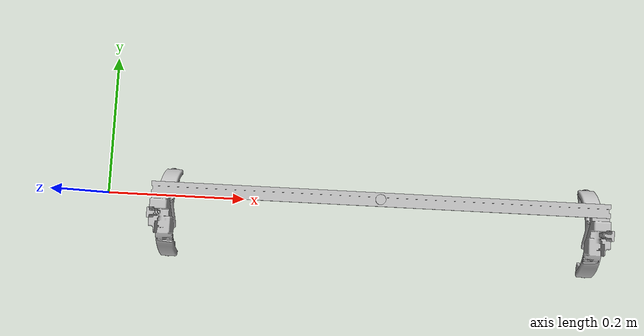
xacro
<?xml version="1.0" ?>
<robot name="gripper" xmlns:xacro="http://www.ros.org/wiki/xacro">

<xacro:include filename="$(find gripper_description)/urdf/materials.xacro" />
<xacro:include filename="$(find gripper_description)/urdf/gripper.trans" />
<xacro:include filename="$(find gripper_description)/urdf/gripper.gazebo" />
<link name="base_link">
  <inertial>
    <origin xyz="0.4 0.01 0.0215" rpy="0 0 0"/>
    <mass value="0.0017494744089678134"/>
    <inertia ixx="0.0" iyy="0.0" izz="0.0" ixy="0.0" iyz="-0.0" ixz="0.0"/>
  </inertial>
  <visual>
    <origin xyz="0 0 0" rpy="0 0 0"/>
    <geometry>
      <mesh filename="file://$(find gripper_description)/meshes/base_link.stl" scale="0.001 0.001 0.001"/>
    </geometry>
    <material name="silver"/>
  </visual>
  <collision>
    <origin xyz="0 0 0" rpy="0 0 0"/>
    <geometry>
      <mesh filename="file://$(find gripper_description)/meshes/base_link.stl" scale="0.001 0.001 0.001"/>
    </geometry>
  </collision>
</link>

<link name="bar_1">
  <inertial>
    <origin xyz="1.9010348850656555e-11 -3.4936407136750697e-06 -0.009977862695465682" rpy="0 0 0"/>
    <mass value="0.5478414730698096"/>
    <inertia ixx="4.1e-05" iyy="0.020157" izz="0.020157" ixy="-0.0" iyz="-0.0" ixz="-0.0"/>
  </inertial>
  <visual>
    <origin xyz="-0.4 -0.01 -0.02" rpy="0 0 0"/>
    <geometry>
      <mesh filename="file://$(find gripper_description)/meshes/bar_1.stl" scale="0.001 0.001 0.001"/>
    </geometry>
    <material name="silver"/>
  </visual>
  <collision>
    <origin xyz="-0.4 -0.01 -0.02" rpy="0 0 0"/>
    <geometry>
      <mesh filename="file://$(find gripper_description)/meshes/bar_1.stl" scale="0.001 0.001 0.001"/>
    </geometry>
  </collision>
</link>

<link name="lock_l_1">
  <inertial>
    <origin xyz="0.0025278748180634775 7.899943317221658e-08 -0.014132337298240557" rpy="0 0 0"/>
    <mass value="0.003835984002304337"/>
    <inertia ixx="1e-06" iyy="1e-06" izz="0.0" ixy="0.0" iyz="-0.0" ixz="-0.0"/>
  </inertial>
  <visual>
    <origin xyz="-0.070204 0.025074 -0.026402" rpy="0 0 0"/>
    <geometry>
      <mesh filename="file://$(find gripper_description)/meshes/lock_l_1.stl" scale="0.001 0.001 0.001"/>
    </geometry>
    <material name="silver"/>
  </visual>
  <collision>
    <origin xyz="-0.070204 0.025074 -0.026402" rpy="0 0 0"/>
    <geometry>
      <mesh filename="file://$(find gripper_description)/meshes/lock_l_1.stl" scale="0.001 0.001 0.001"/>
    </geometry>
  </collision>
</link>

<link name="finger2_l_1">
  <inertial>
    <origin xyz="0.0022745659169525756 -0.00877229789487095 -0.007897715055483763" rpy="0 0 0"/>
    <mass value="0.004845614789206538"/>
    <inertia ixx="4e-06" iyy="3e-06" izz="1e-06" ixy="-0.0" iyz="1e-06" ixz="0.0"/>
  </inertial>
  <visual>
    <origin xyz="-0.0706 -0.035177 0.054438" rpy="0 0 0"/>
    <geometry>
      <mesh filename="file://$(find gripper_description)/meshes/finger2_l_1.stl" scale="0.001 0.001 0.001"/>
    </geometry>
    <material name="silver"/>
  </visual>
  <collision>
    <origin xyz="-0.0706 -0.035177 0.054438" rpy="0 0 0"/>
    <geometry>
      <mesh filename="file://$(find gripper_description)/meshes/finger2_l_1.stl" scale="0.001 0.001 0.001"/>
    </geometry>
  </collision>
</link>

<link name="finger1_l_1">
  <inertial>
    <origin xyz="0.002274564332066839 0.008763184932397444 -0.00790271427358917" rpy="0 0 0"/>
    <mass value="0.004845614849704048"/>
    <inertia ixx="4e-06" iyy="3e-06" izz="1e-06" ixy="-0.0" iyz="-1e-06" ixz="-0.0"/>
  </inertial>
  <visual>
    <origin xyz="-0.0706 0.084598 0.054433" rpy="0 0 0"/>
    <geometry>
      <mesh filename="file://$(find gripper_description)/meshes/finger1_l_1.stl" scale="0.001 0.001 0.001"/>
    </geometry>
    <material name="silver"/>
  </visual>
  <collision>
    <origin xyz="-0.0706 0.084598 0.054433" rpy="0 0 0"/>
    <geometry>
      <mesh filename="file://$(find gripper_description)/meshes/finger1_l_1.stl" scale="0.001 0.001 0.001"/>
    </geometry>
  </collision>
</link>

<link name="lock_r_1">
  <inertial>
    <origin xyz="-0.0025278748180632693 7.899943317568603e-08 -0.014132337298240542" rpy="0 0 0"/>
    <mass value="0.003835984002304337"/>
    <inertia ixx="1e-06" iyy="1e-06" izz="0.0" ixy="-0.0" iyz="-0.0" ixz="0.0"/>
  </inertial>
  <visual>
    <origin xyz="-0.729796 0.025074 -0.026402" rpy="0 0 0"/>
    <geometry>
      <mesh filename="file://$(find gripper_description)/meshes/lock_r_1.stl" scale="0.001 0.001 0.001"/>
    </geometry>
    <material name="silver"/>
  </visual>
  <collision>
    <origin xyz="-0.729796 0.025074 -0.026402" rpy="0 0 0"/>
    <geometry>
      <mesh filename="file://$(find gripper_description)/meshes/lock_r_1.stl" scale="0.001 0.001 0.001"/>
    </geometry>
  </collision>
</link>

<link name="finger1_r_1">
  <inertial>
    <origin xyz="-0.002274564332066742 0.008763184932397486 -0.007902714273589517" rpy="0 0 0"/>
    <mass value="0.004845614849704048"/>
    <inertia ixx="4e-06" iyy="3e-06" izz="1e-06" ixy="0.0" iyz="-1e-06" ixz="0.0"/>
  </inertial>
  <visual>
    <origin xyz="-0.7294 0.084598 0.054433" rpy="0 0 0"/>
    <geometry>
      <mesh filename="file://$(find gripper_description)/meshes/finger1_r_1.stl" scale="0.001 0.001 0.001"/>
    </geometry>
    <material name="silver"/>
  </visual>
  <collision>
    <origin xyz="-0.7294 0.084598 0.054433" rpy="0 0 0"/>
    <geometry>
      <mesh filename="file://$(find gripper_description)/meshes/finger1_r_1.stl" scale="0.001 0.001 0.001"/>
    </geometry>
  </collision>
</link>

<link name="finger2_r_1">
  <inertial>
    <origin xyz="-0.00227456591695252 -0.008772297894870967 -0.007897715055483527" rpy="0 0 0"/>
    <mass value="0.004845614789206536"/>
    <inertia ixx="4e-06" iyy="3e-06" izz="1e-06" ixy="0.0" iyz="1e-06" ixz="-0.0"/>
  </inertial>
  <visual>
    <origin xyz="-0.7294 -0.035177 0.054438" rpy="0 0 0"/>
    <geometry>
      <mesh filename="file://$(find gripper_description)/meshes/finger2_r_1.stl" scale="0.001 0.001 0.001"/>
    </geometry>
    <material name="silver"/>
  </visual>
  <collision>
    <origin xyz="-0.7294 -0.035177 0.054438" rpy="0 0 0"/>
    <geometry>
      <mesh filename="file://$(find gripper_description)/meshes/finger2_r_1.stl" scale="0.001 0.001 0.001"/>
    </geometry>
  </collision>
</link>

<link name="claw_body_l_1">
  <inertial>
    <origin xyz="-0.03524534109739369 -0.0240758801852423 -0.020152637061963127" rpy="0 0 0"/>
    <mass value="0.044924940451362305"/>
    <inertia ixx="6.7e-05" iyy="2.4e-05" izz="4.9e-05" ixy="-0.0" iyz="-1e-06" ixz="-0.0"/>
  </inertial>
  <visual>
    <origin xyz="-0.117506 -0.000138 -0.009943" rpy="0 0 0"/>
    <geometry>
      <mesh filename="file://$(find gripper_description)/meshes/claw_body_l_1.stl" scale="0.001 0.001 0.001"/>
    </geometry>
    <material name="silver"/>
  </visual>
  <collision>
    <origin xyz="-0.117506 -0.000138 -0.009943" rpy="0 0 0"/>
    <geometry>
      <mesh filename="file://$(find gripper_description)/meshes/claw_body_l_1.stl" scale="0.001 0.001 0.001"/>
    </geometry>
  </collision>
</link>

<link name="claw_body_r_1">
  <inertial>
    <origin xyz="0.035245341097393856 -0.024075880185242354 -0.020152637061963248" rpy="0 0 0"/>
    <mass value="0.04492494045136231"/>
    <inertia ixx="6.7e-05" iyy="2.4e-05" izz="4.9e-05" ixy="0.0" iyz="-1e-06" ixz="0.0"/>
  </inertial>
  <visual>
    <origin xyz="-0.682494 -0.000138 -0.009943" rpy="0 0 0"/>
    <geometry>
      <mesh filename="file://$(find gripper_description)/meshes/claw_body_r_1.stl" scale="0.001 0.001 0.001"/>
    </geometry>
    <material name="silver"/>
  </visual>
  <collision>
    <origin xyz="-0.682494 -0.000138 -0.009943" rpy="0 0 0"/>
    <geometry>
      <mesh filename="file://$(find gripper_description)/meshes/claw_body_r_1.stl" scale="0.001 0.001 0.001"/>
    </geometry>
  </collision>
</link>

<joint name="base" type="fixed">
  <origin xyz="0.4 0.01 0.02" rpy="0 0 0"/>
  <parent link="base_link"/>
  <child link="bar_1"/>
</joint>

<joint name="lock_l" type="prismatic">
  <origin xyz="-0.047302 -0.025212 0.016459" rpy="0 0 0"/>
  <parent link="claw_body_l_1"/>
  <child link="lock_l_1"/>
  <axis xyz="0.0 -0.0 1.0"/>
  <limit upper="0.0" lower="-0.02" effort="100" velocity="100"/>
</joint>

<joint name="finger2_l" type="revolute">
  <origin xyz="-0.046906 0.035039 -0.064381" rpy="0 0 0"/>
  <parent link="claw_body_l_1"/>
  <child link="finger2_l_1"/>
  <axis xyz="-1.0 0.0 0.0"/>
  <limit upper="0.087266" lower="-0.15708" effort="100" velocity="100"/>
</joint>

<joint name="finger1_l" type="revolute">
  <origin xyz="-0.046906 -0.084736 -0.064376" rpy="0 0 0"/>
  <parent link="claw_body_l_1"/>
  <child link="finger1_l_1"/>
  <axis xyz="-1.0 0.0 0.0"/>
  <limit upper="0.15708" lower="-0.087266" effort="100" velocity="100"/>
</joint>

<joint name="lock_r" type="prismatic">
  <origin xyz="0.047302 -0.025212 0.016459" rpy="0 0 0"/>
  <parent link="claw_body_r_1"/>
  <child link="lock_r_1"/>
  <axis xyz="0.0 0.0 -1.0"/>
  <limit upper="0.02" lower="0.0" effort="100" velocity="100"/>
</joint>

<joint name="finger1_r" type="revolute">
  <origin xyz="0.046906 -0.084736 -0.064376" rpy="0 0 0"/>
  <parent link="claw_body_r_1"/>
  <child link="finger1_r_1"/>
  <axis xyz="1.0 0.0 0.0"/>
  <limit upper="0.087266" lower="-0.15708" effort="100" velocity="100"/>
</joint>

<joint name="finger2_r" type="revolute">
  <origin xyz="0.046906 0.035039 -0.064381" rpy="0 0 0"/>
  <parent link="claw_body_r_1"/>
  <child link="finger2_r_1"/>
  <axis xyz="1.0 0.0 0.0"/>
  <limit upper="0.15708" lower="-0.087266" effort="100" velocity="100"/>
</joint>

<joint name="claw_body_l" type="fixed">
  <origin xyz="-0.282494 -0.009862 -0.010057" rpy="0 0 0"/>
  <parent link="bar_1"/>
  <child link="claw_body_l_1"/>
</joint>

<joint name="claw_body_r" type="fixed">
  <origin xyz="0.282494 -0.009862 -0.010057" rpy="0 0 0"/>
  <parent link="bar_1"/>
  <child link="claw_body_r_1"/>
</joint>

</robot>

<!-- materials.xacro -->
<robot name="gripper" xmlns:xacro="http://www.ros.org/wiki/xacro" >

<material name="silver">
  <color rgba="0.750 0.750 0.750 1.000"/>
</material>
<material name="red">
  <color rgba="0.700 0.000 0.000 1.000"/>
</material>
<material name="green">
  <color rgba="0.000 0.700 0.000 1.000"/>
</material>
<material name="black">
  <color rgba="0.250 0.250 0.250 1.000"/>
</material>

</robot>

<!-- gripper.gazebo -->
<robot name="gripper" xmlns:xacro="http://www.ros.org/wiki/xacro" >

<xacro:property name="body_color" value="Gazebo/Silver" />

<gazebo>
  <plugin name="control" filename="libgazebo_ros_control.so"/>
</gazebo>
<gazebo reference="base_link">
  <material>${body_color}</material>
  <mu1>0.2</mu1>
  <mu2>0.2</mu2>
  <self_collide>true</self_collide>
  <gravity>true</gravity>
</gazebo>

<gazebo reference="bar_1">
  <material>${body_color}</material>
  <mu1>0.2</mu1>
  <mu2>0.2</mu2>
  <self_collide>true</self_collide>
</gazebo>

<gazebo reference="lock_l_1">
  <material>${body_color}</material>
  <mu1>0.2</mu1>
  <mu2>0.2</mu2>
  <self_collide>true</self_collide>
</gazebo>

<gazebo reference="finger2_l_1">
  <material>${body_color}</material>
  <mu1>0.2</mu1>
  <mu2>0.2</mu2>
  <self_collide>true</self_collide>
</gazebo>

<gazebo reference="finger1_l_1">
  <material>${body_color}</material>
  <mu1>0.2</mu1>
  <mu2>0.2</mu2>
  <self_collide>true</self_collide>
</gazebo>

<gazebo reference="lock_r_1">
  <material>${body_color}</material>
  <mu1>0.2</mu1>
  <mu2>0.2</mu2>
  <self_collide>true</self_collide>
</gazebo>

<gazebo reference="finger1_r_1">
  <material>${body_color}</material>
  <mu1>0.2</mu1>
  <mu2>0.2</mu2>
  <self_collide>true</self_collide>
</gazebo>

<gazebo reference="finger2_r_1">
  <material>${body_color}</material>
  <mu1>0.2</mu1>
  <mu2>0.2</mu2>
  <self_collide>true</self_collide>
</gazebo>

<gazebo reference="claw_body_l_1">
  <material>${body_color}</material>
  <mu1>0.2</mu1>
  <mu2>0.2</mu2>
  <self_collide>true</self_collide>
</gazebo>

<gazebo reference="claw_body_r_1">
  <material>${body_color}</material>
  <mu1>0.2</mu1>
  <mu2>0.2</mu2>
  <self_collide>true</self_collide>
</gazebo>

</robot>
